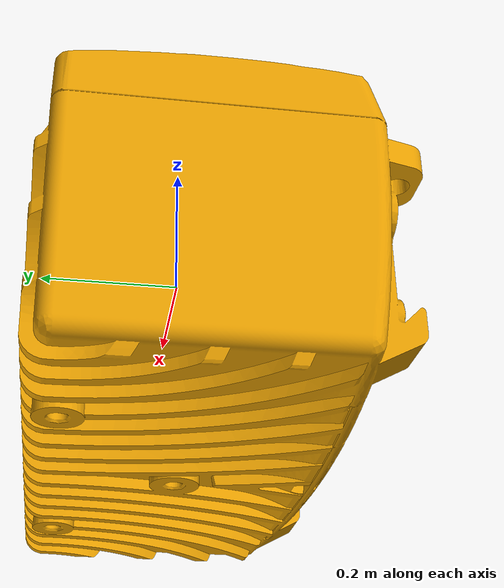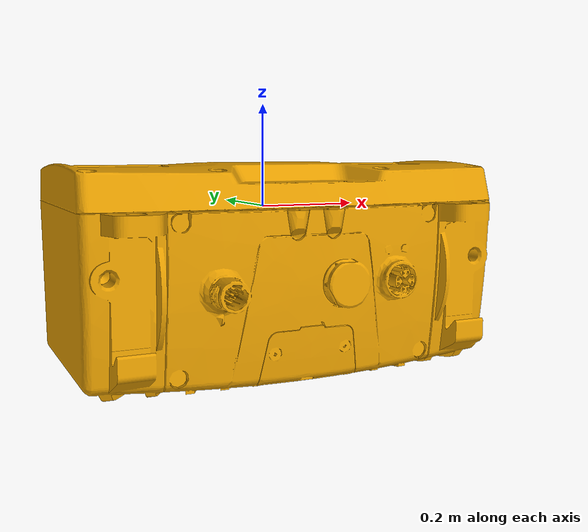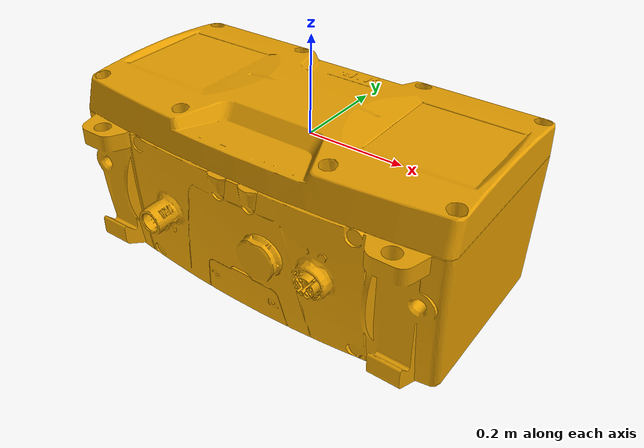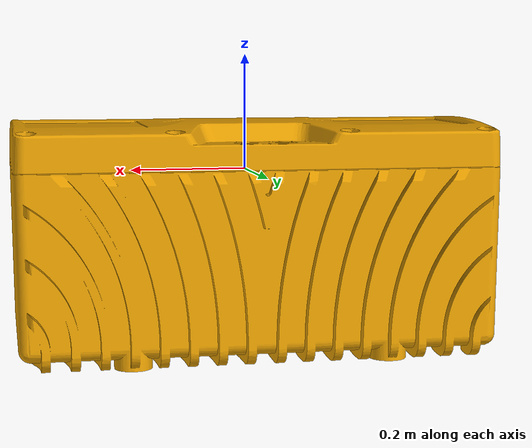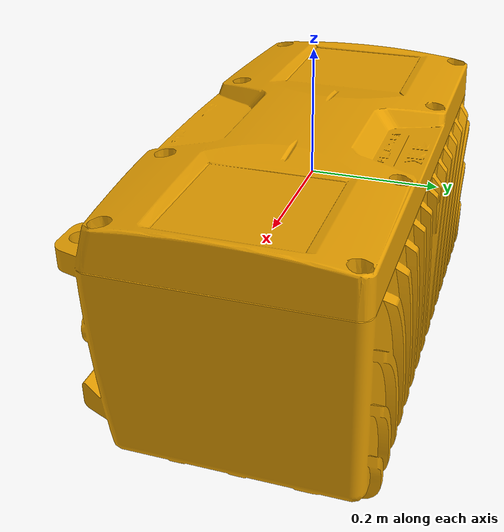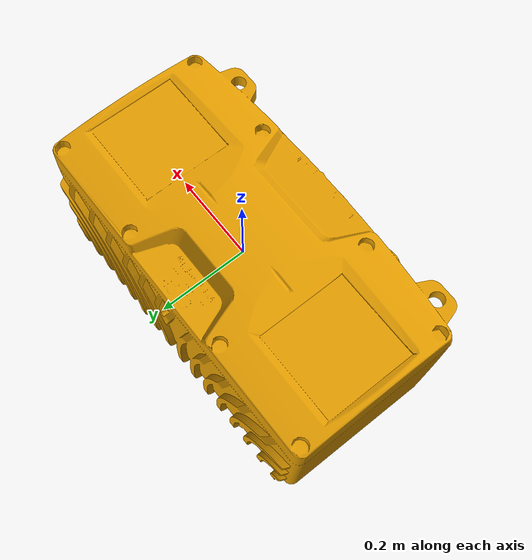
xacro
<?xml version="1.0"?>
<robot xmlns:xacro="http://ros.org/wiki/xacro" name="Visionary-B Two">
    <xacro:arg name="link_name" default=""/>
    <link name="$(arg link_name)">
        <visual>
            <geometry>
                <mesh filename="package://sick_publisher/meshes/visionary_b_two.dae" scale="0.005 0.005 0.005"/>
            </geometry>
        </visual>
    </link>
</robot>
